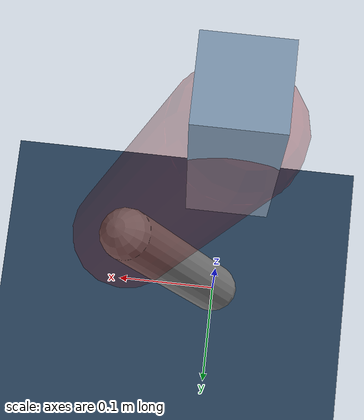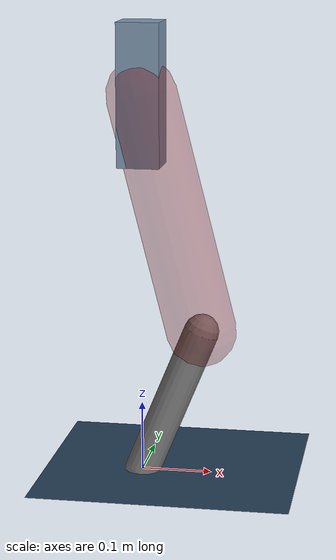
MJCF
<mujoco model="Hopper2D">
	<compiler inertiafromgeom="true" angle="radian" />
	<option timestep="0.001" integrator="implicit" cone="elliptic" solver="Newton" tolerance="1e-10" />

	<default>
		<geom contype="1" conaffinity="1" condim="3" friction="2 0.005 0.0001" solref="0.005 1" />
		<joint limited="true" damping="0.1" />
	</default>

	<asset>
		<texture name="skybox" type="skybox" builtin="gradient" rgb1=".4 .6 .8" rgb2="0 0 0" width="800" height="800" />
		<texture name="grid" type="2d" builtin="checker" rgb1=".1 .2 .3" rgb2=".2 .3 .4" width="300" height="300" mark="edge" markrgb=".2 .3 .4" />
		<material name="ground" texture="grid" texrepeat="1 1" texuniform="true" reflectance="0.1" />
		<material name="leg" rgba="0.5 0.6 0.7 1" />
	</asset>

	<worldbody>

		<geom name="floor" type="plane" size="5 5 0.25" material="ground" />

		<light directional="false" diffuse="0.8 0.8 0.8" specular="0.3 0.3 0.3" pos="0 0 2" dir="0 0 -1" />
		<light mode="targetbodycom" target="base" directional="false" diffuse="0.8 0.8 0.8" specular="0.3 0.3 0.3" pos="0 0 2" dir="0 0 -1" />

		<camera name="fixed" pos="0 -2 1" xyaxes="1 0 0 0 0 1" />
		<camera name="tracking" mode="trackcom" pos="0 -3 1" />

		<body name="root" pos="0 0 0.545681183907554">
			<joint name="slide_x" type="slide" axis="1 0 0" range="-100 100" />
			<joint name="slide_z" type="slide" axis="0 0 1" range="0 10" />

			<body name="base" pos="0 0 0">
				<geom name="torso" type="box" size="0.03 0.03 0.1" mass="1.446" material="leg" />

				<body name="link1" pos="0 0 0" euler="0 1.3209789871047695 0">
					<joint type="hinge" axis="0 -1 0" pos="0 0 0" name="hinge1" limited="true" range="-3.14 3.14" stiffness="0" damping="0.1" />
					<geom name="thigh" type="capsule" fromto="0 0 0 0.3465721453487634 0 0" size="0.05" rgba="0.5 0 0 0.3" mass="1.117059221511414" />

					<body name="link2" pos="0.3465721453487634 0 0" euler="0 0.6374301436590061 0">
						<joint type="hinge" axis="0 -1 0" pos="0 0 0" name="hinge2" limited="true" range="-3.14 3.14" stiffness="0" damping="0.1" />
						<geom name="shank" type="capsule" fromto="0 0 0 0.22668426830261512 0 0" size="0.025" mass="0.4232474146420921" />

					</body>
				</body>
			</body>
		</body>
	</worldbody>

	<actuator>
		<motor name="torque1" joint="hinge1" ctrlrange="-43.7583945460753 43.7583945460753" ctrllimited="true" gear="1" />
		<motor name="torque2" joint="hinge2" ctrlrange="-23.783968178520276 23.783968178520276" ctrllimited="true" gear="1" />
	</actuator>
</mujoco>
